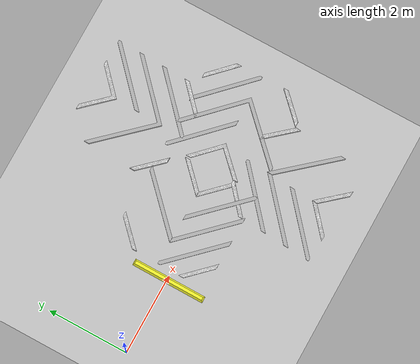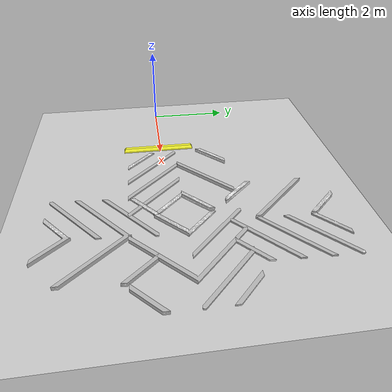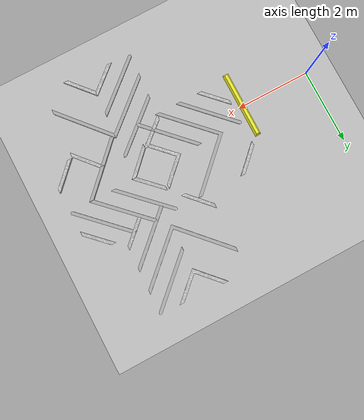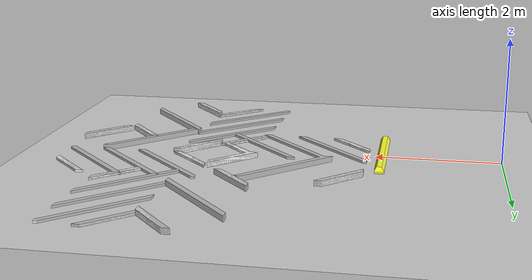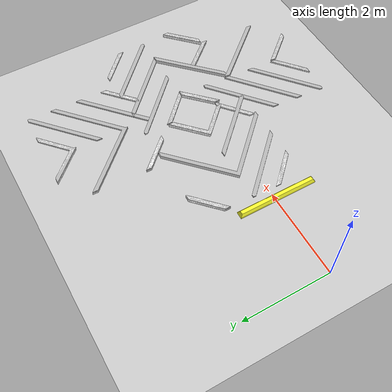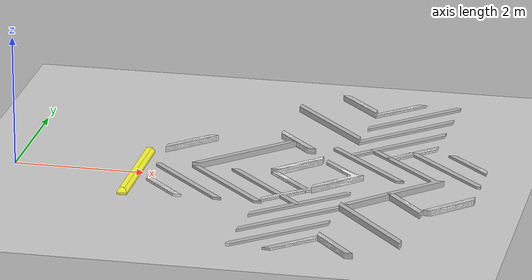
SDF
<sdf version="1.7">
 <world name="default">
  <plugin filename="gz-sim-physics-system" name="gz::sim::systems::Physics"/>
  <plugin filename="gz-sim-user-commands-system" name="gz::sim::systems::UserCommands"/>
  <plugin filename="gz-sim-scene-broadcaster-system" name="gz::sim::systems::SceneBroadcaster"/>
  <plugin filename="gz-sim-sensors-system" name="gz::sim::systems::Sensors">
   <render_engine>ogre2</render_engine>
  </plugin>
  <plugin filename="gz-sim-imu-system" name="gz::sim::systems::Imu"/>
  <plugin filename="gz_ros2_control-system" name="gz_ros2_control::GazeboSimROS2ControlPlugin">
   <parameters>$(find mtt_bringup)/config/control_config.yaml</parameters>
  </plugin>
  <light name="sun" type="directional">
   <pose>0 0 10 0 -0 0</pose>
   <diffuse>0.8 0.8 0.8 1</diffuse>
   <specular>0.2 0.2 0.2 1</specular>
   <attenuation>
    <range>1000</range>
    <constant>0.9</constant>
    <linear>0.01</linear>
    <quadratic>0.001</quadratic>
   </attenuation>
   <direction>-0.5 0.1 -0.9</direction>
   <spot><inner_angle>0</inner_angle><outer_angle>0</outer_angle><falloff>0</falloff></spot>
  </light>
  <model name="ground_plane">
   <static>1</static>
   <link name="link">
    <collision name="collision">
     <geometry><plane><normal>0 0 1</normal><size>100 100</size></plane></geometry>
     <surface>
      <contact><collide_bitmask>65535</collide_bitmask></contact>
      <friction><ode><mu>100</mu><mu2>50</mu2></ode></friction>
     </surface>
    </collision>
    <visual name="visual">
     <cast_shadows>0</cast_shadows>
     <geometry><plane><normal>0 0 1</normal><size>100 100</size></plane></geometry>
     <material>
      <script><uri>file://media/materials/scripts/gazebo.material</uri><name>Gazebo/Grey</name></script>
     </material>
    </visual>
   </link>
  </model>
  <gravity>0 0 -9.8</gravity>
  <magnetic_field>6e-06 2.3e-05 -4.2e-05</magnetic_field>
  <atmosphere type="adiabatic"/>
  <physics type="ode">
   <max_step_size>0.001</max_step_size>
   <real_time_factor>1</real_time_factor>
   <real_time_update_rate>1000</real_time_update_rate>
  </physics>
  <scene><ambient>0.4 0.4 0.4 1</ambient><background>0.7 0.7 0.7 1</background><shadows>1</shadows></scene>
  <audio><device>default</device></audio>
  <spherical_coordinates>
   <surface_model>EARTH_WGS84</surface_model>
   <latitude_deg>0</latitude_deg>
   <longitude_deg>0</longitude_deg>
   <elevation>0</elevation>
   <heading_deg>0</heading_deg>
  </spherical_coordinates>
  <model name="wood_slats">
   <static>1</static>
   <link name="link">
    <collision name="collision">
     <geometry><mesh><uri>model://drc_practice_wood_slats/meshes/wood_slats.dae</uri></mesh></geometry>
     <surface>
      <bounce><restitution_coefficient>0.01</restitution_coefficient><threshold>5</threshold></bounce>
      <friction><ode><mu>5</mu><mu2>5</mu2></ode></friction>
      <contact>
       <ode>
        <soft_cfm>0.001</soft_cfm>
        <kp>10000</kp>
        <kd>1000</kd>
        <max_vel>0.01</max_vel>
        <min_depth>0.001</min_depth>
       </ode>
      </contact>
     </surface>
    </collision>
    <visual name="visual">
     <geometry><mesh><uri>model://drc_practice_wood_slats/meshes/wood_slats.dae</uri></mesh></geometry>
    </visual>
   </link>
   <pose>4.53966 -0.885559 0 0 -0 1.55552</pose>
  </model>
  <model name="wood_slats_clone">
   <static>1</static>
   <link name="link">
    <collision name="collision">
     <geometry><mesh><uri>model://drc_practice_wood_slats/meshes/wood_slats.dae</uri></mesh></geometry>
     <surface>
      <bounce><restitution_coefficient>0.01</restitution_coefficient><threshold>5</threshold></bounce>
      <friction><ode><mu>5</mu><mu2>5</mu2></ode></friction>
      <contact>
       <ode>
        <soft_cfm>0.001</soft_cfm>
        <kp>10000</kp>
        <kd>1000</kd>
        <max_vel>0.01</max_vel>
        <min_depth>0.001</min_depth>
       </ode>
      </contact>
     </surface>
    </collision>
    <visual name="visual">
     <geometry><mesh><uri>model://drc_practice_wood_slats/meshes/wood_slats.dae</uri></mesh></geometry>
    </visual>
   </link>
   <pose>4.6228 1.56224 0 0 0 -1.56763</pose>
  </model>
  <model name="wood_slats_clone_clone">
   <static>1</static>
   <link name="link">
    <collision name="collision">
     <geometry><mesh><uri>model://drc_practice_wood_slats/meshes/wood_slats.dae</uri></mesh></geometry>
     <surface>
      <bounce><restitution_coefficient>0.01</restitution_coefficient><threshold>5</threshold></bounce>
      <friction><ode><mu>5</mu><mu2>5</mu2></ode></friction>
      <contact>
       <ode>
        <soft_cfm>0.001</soft_cfm>
        <kp>10000</kp>
        <kd>1000</kd>
        <max_vel>0.01</max_vel>
        <min_depth>0.001</min_depth>
       </ode>
      </contact>
     </surface>
    </collision>
    <visual name="visual">
     <geometry><mesh><uri>model://drc_practice_wood_slats/meshes/wood_slats.dae</uri></mesh></geometry>
    </visual>
   </link>
   <pose>3.81716 -2.60473 0 0 0 -0.072482</pose>
  </model>
  <model name="wood_slats_clone_clone_0">
   <static>1</static>
   <link name="link">
    <collision name="collision">
     <geometry><mesh><uri>model://drc_practice_wood_slats/meshes/wood_slats.dae</uri></mesh></geometry>
     <surface>
      <bounce><restitution_coefficient>0.01</restitution_coefficient><threshold>5</threshold></bounce>
      <friction><ode><mu>5</mu><mu2>5</mu2></ode></friction>
      <contact>
       <ode>
        <soft_cfm>0.001</soft_cfm>
        <kp>10000</kp>
        <kd>1000</kd>
        <max_vel>0.01</max_vel>
        <min_depth>0.001</min_depth>
       </ode>
      </contact>
     </surface>
    </collision>
    <visual name="visual">
     <geometry><mesh><uri>model://drc_practice_wood_slats/meshes/wood_slats.dae</uri></mesh></geometry>
    </visual>
   </link>
   <pose>6.24256 3.66711 0 0 -0 3.10331</pose>
  </model>
  <model name="drc_practice_yellow_parking_block">
   <static>1</static>
   <link name="link">
    <visual name="visual">
     <geometry><mesh><uri>model://drc_practice_yellow_parking_block/meshes/block.dae</uri></mesh></geometry>
    </visual>
    <collision name="collision">
     <geometry><mesh><uri>model://drc_practice_yellow_parking_block/meshes/block.dae</uri></mesh></geometry>
    </collision>
   </link>
   <pose>1.89226 -0.047515 0 0 -0 0</pose>
  </model>
 </world>
</sdf>
